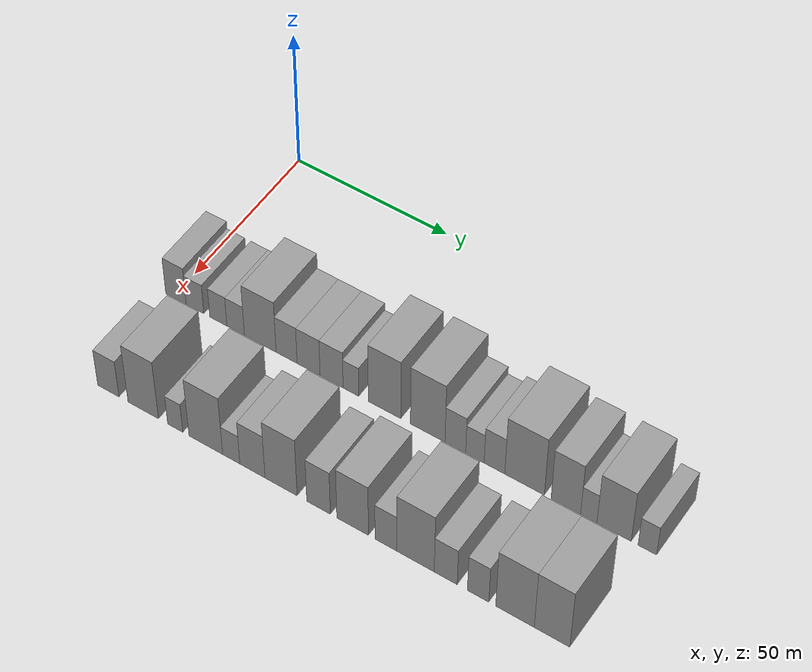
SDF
<sdf version="1.6">
 <world name="default">
  <model name="building_36">
   <static>1</static>
   <pose>50.0000 0.9713 0 0.000000 0.000000 0.000000</pose>
   <link name="link">
    <pose>0 0 7.50 0 0 0</pose>
    <collision name="collision"><geometry><box><size>20.0000 6.8584 15.0000</size></box></geometry></collision>
    <visual name="visual">
     <cast_shadows>0</cast_shadows>
     <geometry><box><size>20.0000 6.8584 15.0000</size></box></geometry>
     <material>
      <script>
       <uri>model://grey_wall/materials/scripts</uri>
       <uri>model://grey_wall/materials/textures</uri>
       <name>vrc/grey_wall</name>
      </script>
     </material>
    </visual>
   </link>
  </model>
  <model name="building_37">
   <static>1</static>
   <pose>50.0000 7.3780 0 0.000000 0.000000 0.000000</pose>
   <link name="link">
    <pose>0 0 6.00 0 0 0</pose>
    <collision name="collision"><geometry><box><size>20.0000 5.9550 12.0000</size></box></geometry></collision>
    <visual name="visual">
     <cast_shadows>0</cast_shadows>
     <geometry><box><size>20.0000 5.9550 12.0000</size></box></geometry>
     <material>
      <script>
       <uri>model://grey_wall/materials/scripts</uri>
       <uri>model://grey_wall/materials/textures</uri>
       <name>vrc/grey_wall</name>
      </script>
     </material>
    </visual>
   </link>
  </model>
  <model name="building_38">
   <static>1</static>
   <pose>50.0000 15.1989 0 0.000000 0.000000 0.000000</pose>
   <link name="link">
    <pose>0 0 6.00 0 0 0</pose>
    <collision name="collision"><geometry><box><size>20.0000 5.6868 12.0000</size></box></geometry></collision>
    <visual name="visual">
     <cast_shadows>0</cast_shadows>
     <geometry><box><size>20.0000 5.6868 12.0000</size></box></geometry>
     <material>
      <script>
       <uri>model://grey_wall/materials/scripts</uri>
       <uri>model://grey_wall/materials/textures</uri>
       <name>vrc/grey_wall</name>
      </script>
     </material>
    </visual>
   </link>
  </model>
  <model name="building_39">
   <static>1</static>
   <pose>50.0000 20.9479 0 0.000000 0.000000 0.000000</pose>
   <link name="link">
    <pose>0 0 6.00 0 0 0</pose>
    <collision name="collision"><geometry><box><size>20.0000 5.8113 12.0000</size></box></geometry></collision>
    <visual name="visual">
     <cast_shadows>0</cast_shadows>
     <geometry><box><size>20.0000 5.8113 12.0000</size></box></geometry>
     <material>
      <script>
       <uri>model://grey_wall/materials/scripts</uri>
       <uri>model://grey_wall/materials/textures</uri>
       <name>vrc/grey_wall</name>
      </script>
     </material>
    </visual>
   </link>
  </model>
  <model name="building_40">
   <static>1</static>
   <pose>50.0000 29.0621 0 0.000000 0.000000 0.000000</pose>
   <link name="link">
    <pose>0 0 10.50 0 0 0</pose>
    <collision name="collision"><geometry><box><size>20.0000 10.4169 21.0000</size></box></geometry></collision>
    <visual name="visual">
     <cast_shadows>0</cast_shadows>
     <geometry><box><size>20.0000 10.4169 21.0000</size></box></geometry>
     <material>
      <script>
       <uri>model://grey_wall/materials/scripts</uri>
       <uri>model://grey_wall/materials/textures</uri>
       <name>vrc/grey_wall</name>
      </script>
     </material>
    </visual>
   </link>
  </model>
  <model name="building_41">
   <static>1</static>
   <pose>50.0000 37.6829 0 0.000000 0.000000 0.000000</pose>
   <link name="link">
    <pose>0 0 7.50 0 0 0</pose>
    <collision name="collision"><geometry><box><size>20.0000 6.8248 15.0000</size></box></geometry></collision>
    <visual name="visual">
     <cast_shadows>0</cast_shadows>
     <geometry><box><size>20.0000 6.8248 15.0000</size></box></geometry>
     <material>
      <script>
       <uri>model://grey_wall/materials/scripts</uri>
       <uri>model://grey_wall/materials/textures</uri>
       <name>vrc/grey_wall</name>
      </script>
     </material>
    </visual>
   </link>
  </model>
  <model name="building_42">
   <static>1</static>
   <pose>50.0000 44.8010 0 0.000000 0.000000 0.000000</pose>
   <link name="link">
    <pose>0 0 7.50 0 0 0</pose>
    <collision name="collision"><geometry><box><size>20.0000 7.4113 15.0000</size></box></geometry></collision>
    <visual name="visual">
     <cast_shadows>0</cast_shadows>
     <geometry><box><size>20.0000 7.4113 15.0000</size></box></geometry>
     <material>
      <script>
       <uri>model://grey_wall/materials/scripts</uri>
       <uri>model://grey_wall/materials/textures</uri>
       <name>vrc/grey_wall</name>
      </script>
     </material>
    </visual>
   </link>
  </model>
  <model name="building_43">
   <static>1</static>
   <pose>50.0000 52.2035 0 0.000000 0.000000 0.000000</pose>
   <link name="link">
    <pose>0 0 7.50 0 0 0</pose>
    <collision name="collision"><geometry><box><size>20.0000 7.3937 15.0000</size></box></geometry></collision>
    <visual name="visual">
     <cast_shadows>0</cast_shadows>
     <geometry><box><size>20.0000 7.3937 15.0000</size></box></geometry>
     <material>
      <script>
       <uri>model://grey_wall/materials/scripts</uri>
       <uri>model://grey_wall/materials/textures</uri>
       <name>vrc/grey_wall</name>
      </script>
     </material>
    </visual>
   </link>
  </model>
  <model name="building_44">
   <static>1</static>
   <pose>50.0000 58.3986 0 0.000000 0.000000 0.000000</pose>
   <link name="link">
    <pose>0 0 6.00 0 0 0</pose>
    <collision name="collision"><geometry><box><size>20.0000 4.9967 12.0000</size></box></geometry></collision>
    <visual name="visual">
     <cast_shadows>0</cast_shadows>
     <geometry><box><size>20.0000 4.9967 12.0000</size></box></geometry>
     <material>
      <script>
       <uri>model://grey_wall/materials/scripts</uri>
       <uri>model://grey_wall/materials/textures</uri>
       <name>vrc/grey_wall</name>
      </script>
     </material>
    </visual>
   </link>
  </model>
  <model name="building_45">
   <static>1</static>
   <pose>50.0000 69.0226 0 0.000000 0.000000 0.000000</pose>
   <link name="link">
    <pose>0 0 12.00 0 0 0</pose>
    <collision name="collision"><geometry><box><size>20.0000 10.2512 24.0000</size></box></geometry></collision>
    <visual name="visual">
     <cast_shadows>0</cast_shadows>
     <geometry><box><size>20.0000 10.2512 24.0000</size></box></geometry>
     <material>
      <script>
       <uri>model://grey_wall/materials/scripts</uri>
       <uri>model://grey_wall/materials/textures</uri>
       <name>vrc/grey_wall</name>
      </script>
     </material>
    </visual>
   </link>
  </model>
  <model name="building_46">
   <static>1</static>
   <pose>50.0000 82.5112 0 0.000000 0.000000 0.000000</pose>
   <link name="link">
    <pose>0 0 12.00 0 0 0</pose>
    <collision name="collision"><geometry><box><size>20.0000 10.7260 24.0000</size></box></geometry></collision>
    <visual name="visual">
     <cast_shadows>0</cast_shadows>
     <geometry><box><size>20.0000 10.7260 24.0000</size></box></geometry>
     <material>
      <script>
       <uri>model://grey_wall/materials/scripts</uri>
       <uri>model://grey_wall/materials/textures</uri>
       <name>vrc/grey_wall</name>
      </script>
     </material>
    </visual>
   </link>
  </model>
  <model name="building_47">
   <static>1</static>
   <pose>50.0000 91.0596 0 0.000000 0.000000 0.000000</pose>
   <link name="link">
    <pose>0 0 7.50 0 0 0</pose>
    <collision name="collision"><geometry><box><size>20.0000 6.3709 15.0000</size></box></geometry></collision>
    <visual name="visual">
     <cast_shadows>0</cast_shadows>
     <geometry><box><size>20.0000 6.3709 15.0000</size></box></geometry>
     <material>
      <script>
       <uri>model://grey_wall/materials/scripts</uri>
       <uri>model://grey_wall/materials/textures</uri>
       <name>vrc/grey_wall</name>
      </script>
     </material>
    </visual>
   </link>
  </model>
  <model name="building_48">
   <static>1</static>
   <pose>50.0000 97.0507 0 0.000000 0.000000 0.000000</pose>
   <link name="link">
    <pose>0 0 6.00 0 0 0</pose>
    <collision name="collision"><geometry><box><size>20.0000 5.6112 12.0000</size></box></geometry></collision>
    <visual name="visual">
     <cast_shadows>0</cast_shadows>
     <geometry><box><size>20.0000 5.6112 12.0000</size></box></geometry>
     <material>
      <script>
       <uri>model://grey_wall/materials/scripts</uri>
       <uri>model://grey_wall/materials/textures</uri>
       <name>vrc/grey_wall</name>
      </script>
     </material>
    </visual>
   </link>
  </model>
  <model name="building_49">
   <static>1</static>
   <pose>50.0000 103.0022 0 0.000000 0.000000 0.000000</pose>
   <link name="link">
    <pose>0 0 7.50 0 0 0</pose>
    <collision name="collision"><geometry><box><size>20.0000 6.2918 15.0000</size></box></geometry></collision>
    <visual name="visual">
     <cast_shadows>0</cast_shadows>
     <geometry><box><size>20.0000 6.2918 15.0000</size></box></geometry>
     <material>
      <script>
       <uri>model://grey_wall/materials/scripts</uri>
       <uri>model://grey_wall/materials/textures</uri>
       <name>vrc/grey_wall</name>
      </script>
     </material>
    </visual>
   </link>
  </model>
  <model name="building_50">
   <static>1</static>
   <pose>50.0000 112.0945 0 0.000000 0.000000 0.000000</pose>
   <link name="link">
    <pose>0 0 12.00 0 0 0</pose>
    <collision name="collision"><geometry><box><size>20.0000 11.8927 24.0000</size></box></geometry></collision>
    <visual name="visual">
     <cast_shadows>0</cast_shadows>
     <geometry><box><size>20.0000 11.8927 24.0000</size></box></geometry>
     <material>
      <script>
       <uri>model://grey_wall/materials/scripts</uri>
       <uri>model://grey_wall/materials/textures</uri>
       <name>vrc/grey_wall</name>
      </script>
     </material>
    </visual>
   </link>
  </model>
  <model name="building_51">
   <static>1</static>
   <pose>50.0000 124.4089 0 0.000000 0.000000 0.000000</pose>
   <link name="link">
    <pose>0 0 10.50 0 0 0</pose>
    <collision name="collision"><geometry><box><size>20.0000 8.7361 21.0000</size></box></geometry></collision>
    <visual name="visual">
     <cast_shadows>0</cast_shadows>
     <geometry><box><size>20.0000 8.7361 21.0000</size></box></geometry>
     <material>
      <script>
       <uri>model://grey_wall/materials/scripts</uri>
       <uri>model://grey_wall/materials/textures</uri>
       <name>vrc/grey_wall</name>
      </script>
     </material>
    </visual>
   </link>
  </model>
  <model name="building_52">
   <static>1</static>
   <pose>50.0000 131.1830 0 0.000000 0.000000 0.000000</pose>
   <link name="link">
    <pose>0 0 6.00 0 0 0</pose>
    <collision name="collision"><geometry><box><size>20.0000 4.8120 12.0000</size></box></geometry></collision>
    <visual name="visual">
     <cast_shadows>0</cast_shadows>
     <geometry><box><size>20.0000 4.8120 12.0000</size></box></geometry>
     <material>
      <script>
       <uri>model://grey_wall/materials/scripts</uri>
       <uri>model://grey_wall/materials/textures</uri>
       <name>vrc/grey_wall</name>
      </script>
     </material>
    </visual>
   </link>
  </model>
  <model name="building_53">
   <static>1</static>
   <pose>50.0000 138.6025 0 0.000000 0.000000 0.000000</pose>
   <link name="link">
    <pose>0 0 10.50 0 0 0</pose>
    <collision name="collision"><geometry><box><size>20.0000 10.0271 21.0000</size></box></geometry></collision>
    <visual name="visual">
     <cast_shadows>0</cast_shadows>
     <geometry><box><size>20.0000 10.0271 21.0000</size></box></geometry>
     <material>
      <script>
       <uri>model://grey_wall/materials/scripts</uri>
       <uri>model://grey_wall/materials/textures</uri>
       <name>vrc/grey_wall</name>
      </script>
     </material>
    </visual>
   </link>
  </model>
  <model name="building_54">
   <static>1</static>
   <pose>50.0000 148.3001 0 0.000000 0.000000 0.000000</pose>
   <link name="link">
    <pose>0 0 6.00 0 0 0</pose>
    <collision name="collision"><geometry><box><size>20.0000 5.3681 12.0000</size></box></geometry></collision>
    <visual name="visual">
     <cast_shadows>0</cast_shadows>
     <geometry><box><size>20.0000 5.3681 12.0000</size></box></geometry>
     <material>
      <script>
       <uri>model://grey_wall/materials/scripts</uri>
       <uri>model://grey_wall/materials/textures</uri>
       <name>vrc/grey_wall</name>
      </script>
     </material>
    </visual>
   </link>
  </model>
  <model name="building_104">
   <static>1</static>
   <pose>85.0000 4.7900 0 0.000000 0.000000 0.000000</pose>
   <link name="link">
    <pose>0 0 7.50 0 0 0</pose>
    <collision name="collision"><geometry><box><size>20.0000 7.0365 15.0000</size></box></geometry></collision>
    <visual name="visual">
     <cast_shadows>0</cast_shadows>
     <geometry><box><size>20.0000 7.0365 15.0000</size></box></geometry>
     <material>
      <script>
       <uri>model://grey_wall/materials/scripts</uri>
       <uri>model://grey_wall/materials/textures</uri>
       <name>vrc/grey_wall</name>
      </script>
     </material>
    </visual>
   </link>
  </model>
  <model name="building_105">
   <static>1</static>
   <pose>85.0000 16.2963 0 0.000000 0.000000 0.000000</pose>
   <link name="link">
    <pose>0 0 12.00 0 0 0</pose>
    <collision name="collision"><geometry><box><size>20.0000 9.9761 24.0000</size></box></geometry></collision>
    <visual name="visual">
     <cast_shadows>0</cast_shadows>
     <geometry><box><size>20.0000 9.9761 24.0000</size></box></geometry>
     <material>
      <script>
       <uri>model://grey_wall/materials/scripts</uri>
       <uri>model://grey_wall/materials/textures</uri>
       <name>vrc/grey_wall</name>
      </script>
     </material>
    </visual>
   </link>
  </model>
  <model name="building_106">
   <static>1</static>
   <pose>85.0000 26.7375 0 0.000000 0.000000 0.000000</pose>
   <link name="link">
    <pose>0 0 6.00 0 0 0</pose>
    <collision name="collision"><geometry><box><size>20.0000 4.9063 12.0000</size></box></geometry></collision>
    <visual name="visual">
     <cast_shadows>0</cast_shadows>
     <geometry><box><size>20.0000 4.9063 12.0000</size></box></geometry>
     <material>
      <script>
       <uri>model://grey_wall/materials/scripts</uri>
       <uri>model://grey_wall/materials/textures</uri>
       <name>vrc/grey_wall</name>
      </script>
     </material>
    </visual>
   </link>
  </model>
  <model name="building_107">
   <static>1</static>
   <pose>85.0000 36.5981 0 0.000000 0.000000 0.000000</pose>
   <link name="link">
    <pose>0 0 12.00 0 0 0</pose>
    <collision name="collision"><geometry><box><size>20.0000 10.8150 24.0000</size></box></geometry></collision>
    <visual name="visual">
     <cast_shadows>0</cast_shadows>
     <geometry><box><size>20.0000 10.8150 24.0000</size></box></geometry>
     <material>
      <script>
       <uri>model://grey_wall/materials/scripts</uri>
       <uri>model://grey_wall/materials/textures</uri>
       <name>vrc/grey_wall</name>
      </script>
     </material>
    </visual>
   </link>
  </model>
  <model name="building_108">
   <static>1</static>
   <pose>85.0000 44.7416 0 0.000000 0.000000 0.000000</pose>
   <link name="link">
    <pose>0 0 6.00 0 0 0</pose>
    <collision name="collision"><geometry><box><size>20.0000 5.4720 12.0000</size></box></geometry></collision>
    <visual name="visual">
     <cast_shadows>0</cast_shadows>
     <geometry><box><size>20.0000 5.4720 12.0000</size></box></geometry>
     <material>
      <script>
       <uri>model://grey_wall/materials/scripts</uri>
       <uri>model://grey_wall/materials/textures</uri>
       <name>vrc/grey_wall</name>
      </script>
     </material>
    </visual>
   </link>
  </model>
  <model name="building_109">
   <static>1</static>
   <pose>85.0000 51.4442 0 0.000000 0.000000 0.000000</pose>
   <link name="link">
    <pose>0 0 9.00 0 0 0</pose>
    <collision name="collision"><geometry><box><size>20.0000 7.9330 18.0000</size></box></geometry></collision>
    <visual name="visual">
     <cast_shadows>0</cast_shadows>
     <geometry><box><size>20.0000 7.9330 18.0000</size></box></geometry>
     <material>
      <script>
       <uri>model://grey_wall/materials/scripts</uri>
       <uri>model://grey_wall/materials/textures</uri>
       <name>vrc/grey_wall</name>
      </script>
     </material>
    </visual>
   </link>
  </model>
  <model name="building_110">
   <static>1</static>
   <pose>85.0000 60.4365 0 0.000000 0.000000 0.000000</pose>
   <link name="link">
    <pose>0 0 12.00 0 0 0</pose>
    <collision name="collision"><geometry><box><size>20.0000 10.0516 24.0000</size></box></geometry></collision>
    <visual name="visual">
     <cast_shadows>0</cast_shadows>
     <geometry><box><size>20.0000 10.0516 24.0000</size></box></geometry>
     <material>
      <script>
       <uri>model://grey_wall/materials/scripts</uri>
       <uri>model://grey_wall/materials/textures</uri>
       <name>vrc/grey_wall</name>
      </script>
     </material>
    </visual>
   </link>
  </model>
  <model name="building_111">
   <static>1</static>
   <pose>85.0000 72.0995 0 0.000000 0.000000 0.000000</pose>
   <link name="link">
    <pose>0 0 9.00 0 0 0</pose>
    <collision name="collision"><geometry><box><size>20.0000 7.2744 18.0000</size></box></geometry></collision>
    <visual name="visual">
     <cast_shadows>0</cast_shadows>
     <geometry><box><size>20.0000 7.2744 18.0000</size></box></geometry>
     <material>
      <script>
       <uri>model://grey_wall/materials/scripts</uri>
       <uri>model://grey_wall/materials/textures</uri>
       <name>vrc/grey_wall</name>
      </script>
     </material>
    </visual>
   </link>
  </model>
  <model name="building_112">
   <static>1</static>
   <pose>85.0000 82.5572 0 0.000000 0.000000 0.000000</pose>
   <link name="link">
    <pose>0 0 10.50 0 0 0</pose>
    <collision name="collision"><geometry><box><size>20.0000 9.6410 21.0000</size></box></geometry></collision>
    <visual name="visual">
     <cast_shadows>0</cast_shadows>
     <geometry><box><size>20.0000 9.6410 21.0000</size></box></geometry>
     <material>
      <script>
       <uri>model://grey_wall/materials/scripts</uri>
       <uri>model://grey_wall/materials/textures</uri>
       <name>vrc/grey_wall</name>
      </script>
     </material>
    </visual>
   </link>
  </model>
  <model name="building_113">
   <static>1</static>
   <pose>85.0000 92.6479 0 0.000000 0.000000 0.000000</pose>
   <link name="link">
    <pose>0 0 7.50 0 0 0</pose>
    <collision name="collision"><geometry><box><size>20.0000 6.5405 15.0000</size></box></geometry></collision>
    <visual name="visual">
     <cast_shadows>0</cast_shadows>
     <geometry><box><size>20.0000 6.5405 15.0000</size></box></geometry>
     <material>
      <script>
       <uri>model://grey_wall/materials/scripts</uri>
       <uri>model://grey_wall/materials/textures</uri>
       <name>vrc/grey_wall</name>
      </script>
     </material>
    </visual>
   </link>
  </model>
  <model name="building_114">
   <static>1</static>
   <pose>85.0000 101.5313 0 0.000000 0.000000 0.000000</pose>
   <link name="link">
    <pose>0 0 12.00 0 0 0</pose>
    <collision name="collision"><geometry><box><size>20.0000 11.2264 24.0000</size></box></geometry></collision>
    <visual name="visual">
     <cast_shadows>0</cast_shadows>
     <geometry><box><size>20.0000 11.2264 24.0000</size></box></geometry>
     <material>
      <script>
       <uri>model://grey_wall/materials/scripts</uri>
       <uri>model://grey_wall/materials/textures</uri>
       <name>vrc/grey_wall</name>
      </script>
     </material>
    </visual>
   </link>
  </model>
  <model name="building_115">
   <static>1</static>
   <pose>85.0000 110.5446 0 0.000000 0.000000 0.000000</pose>
   <link name="link">
    <pose>0 0 7.50 0 0 0</pose>
    <collision name="collision"><geometry><box><size>20.0000 6.8001 15.0000</size></box></geometry></collision>
    <visual name="visual">
     <cast_shadows>0</cast_shadows>
     <geometry><box><size>20.0000 6.8001 15.0000</size></box></geometry>
     <material>
      <script>
       <uri>model://grey_wall/materials/scripts</uri>
       <uri>model://grey_wall/materials/textures</uri>
       <name>vrc/grey_wall</name>
      </script>
     </material>
    </visual>
   </link>
  </model>
  <model name="building_116">
   <static>1</static>
   <pose>85.0000 120.0820 0 0.000000 0.000000 0.000000</pose>
   <link name="link">
    <pose>0 0 7.50 0 0 0</pose>
    <collision name="collision"><geometry><box><size>20.0000 6.2747 15.0000</size></box></geometry></collision>
    <visual name="visual">
     <cast_shadows>0</cast_shadows>
     <geometry><box><size>20.0000 6.2747 15.0000</size></box></geometry>
     <material>
      <script>
       <uri>model://grey_wall/materials/scripts</uri>
       <uri>model://grey_wall/materials/textures</uri>
       <name>vrc/grey_wall</name>
      </script>
     </material>
    </visual>
   </link>
  </model>
  <model name="building_117">
   <static>1</static>
   <pose>85.0000 130.7941 0 0.000000 0.000000 0.000000</pose>
   <link name="link">
    <pose>0 0 12.00 0 0 0</pose>
    <collision name="collision"><geometry><box><size>20.0000 11.1496 24.0000</size></box></geometry></collision>
    <visual name="visual">
     <cast_shadows>0</cast_shadows>
     <geometry><box><size>20.0000 11.1496 24.0000</size></box></geometry>
     <material>
      <script>
       <uri>model://grey_wall/materials/scripts</uri>
       <uri>model://grey_wall/materials/textures</uri>
       <name>vrc/grey_wall</name>
      </script>
     </material>
    </visual>
   </link>
  </model>
  <model name="building_118">
   <static>1</static>
   <pose>85.0000 141.4559 0 0.000000 0.000000 0.000000</pose>
   <link name="link">
    <pose>0 0 12.00 0 0 0</pose>
    <collision name="collision"><geometry><box><size>20.0000 10.1741 24.0000</size></box></geometry></collision>
    <visual name="visual">
     <cast_shadows>0</cast_shadows>
     <geometry><box><size>20.0000 10.1741 24.0000</size></box></geometry>
     <material>
      <script>
       <uri>model://grey_wall/materials/scripts</uri>
       <uri>model://grey_wall/materials/textures</uri>
       <name>vrc/grey_wall</name>
      </script>
     </material>
    </visual>
   </link>
  </model>
 </world>
</sdf>
